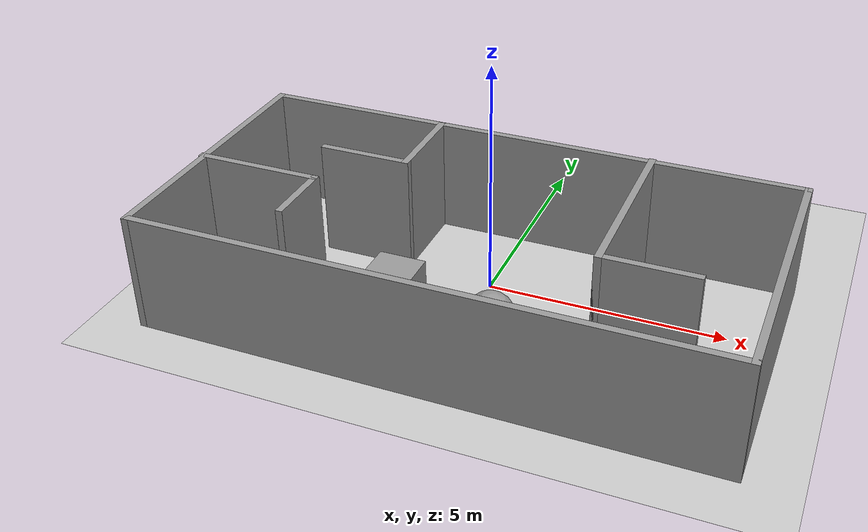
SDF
<sdf version="1.7">
 <world name="default">
  <light name="sun" type="directional">
   <pose>0 0 10 0 -0 0</pose>
   <diffuse>0.8 0.8 0.8 1</diffuse>
   <specular>0.2 0.2 0.2 1</specular>
   <attenuation>
    <range>1000</range>
    <constant>0.9</constant>
    <linear>0.01</linear>
    <quadratic>0.001</quadratic>
   </attenuation>
   <direction>-0.5 0.1 -0.9</direction>
   <spot><inner_angle>0</inner_angle><outer_angle>0</outer_angle><falloff>0</falloff></spot>
  </light>
  <model name="ground_plane">
   <static>1</static>
   <link name="link">
    <collision name="collision">
     <geometry><plane><normal>0 0 1</normal><size>100 100</size></plane></geometry>
     <surface><friction><ode><mu>100</mu><mu2>50</mu2></ode></friction></surface>
    </collision>
    <visual name="visual">
     <cast_shadows>0</cast_shadows>
     <geometry><plane><normal>0 0 1</normal><size>100 100</size></plane></geometry>
     <material>
      <script><uri>file://media/materials/scripts/gazebo.material</uri><name>Gazebo/Grey</name></script>
     </material>
    </visual>
   </link>
  </model>
  <gravity>0 0 -9.8</gravity>
  <magnetic_field>6e-06 2.3e-05 -4.2e-05</magnetic_field>
  <atmosphere type="adiabatic"/>
  <physics type="ode">
   <max_step_size>0.001</max_step_size>
   <real_time_factor>1</real_time_factor>
   <real_time_update_rate>1000</real_time_update_rate>
  </physics>
  <scene><ambient>0.4 0.4 0.4 1</ambient><background>0.7 0.7 0.7 1</background><shadows>1</shadows></scene>
  <audio><device>default</device></audio>
  <spherical_coordinates>
   <surface_model>EARTH_WGS84</surface_model>
   <latitude_deg>0</latitude_deg>
   <longitude_deg>0</longitude_deg>
   <elevation>0</elevation>
   <heading_deg>0</heading_deg>
  </spherical_coordinates>
  <model name="room">
   <pose>-0.02765 0.021981 0 0 -0 0</pose>
   <link name="Wall_0">
    <collision name="Wall_0_Collision">
     <geometry><box><size>12 0.15 2.5</size></box></geometry>
     <pose>0 0 1.25 0 -0 0</pose>
    </collision>
    <visual name="Wall_0_Visual">
     <pose>0 0 1.25 0 -0 0</pose>
     <geometry><box><size>12 0.15 2.5</size></box></geometry>
     <material>
      <script><uri>file://media/materials/scripts/gazebo.material</uri><name>Gazebo/Grey</name></script>
      <ambient>1 1 1 1</ambient>
     </material>
     <meta><layer>0</layer></meta>
    </visual>
    <pose>0.02 2.0375 0 0 -0 0</pose>
   </link>
   <link name="Wall_1">
    <collision name="Wall_1_Collision">
     <geometry><box><size>6 0.15 2.5</size></box></geometry>
     <pose>0 0 1.25 0 -0 0</pose>
    </collision>
    <visual name="Wall_1_Visual">
     <pose>0 0 1.25 0 -0 0</pose>
     <geometry><box><size>6 0.15 2.5</size></box></geometry>
     <material>
      <script><uri>file://media/materials/scripts/gazebo.material</uri><name>Gazebo/Grey</name></script>
      <ambient>1 1 1 1</ambient>
     </material>
     <meta><layer>0</layer></meta>
    </visual>
    <pose>5.945 -0.8875 0 0 -0 -1.5708</pose>
   </link>
   <link name="Wall_11">
    <collision name="Wall_11_Collision">
     <geometry><box><size>4 0.15 2.5</size></box></geometry>
     <pose>0 0 1.25 0 -0 0</pose>
    </collision>
    <visual name="Wall_11_Visual">
     <pose>0 0 1.25 0 -0 0</pose>
     <geometry><box><size>4 0.15 2.5</size></box></geometry>
     <material>
      <script><uri>file://media/materials/scripts/gazebo.material</uri><name>Gazebo/Grey</name></script>
      <ambient>1 1 1 1</ambient>
     </material>
     <meta><layer>0</layer></meta>
    </visual>
    <pose>2.775 0.1525 0 0 -0 -1.5708</pose>
   </link>
   <link name="Wall_12">
    <collision name="Wall_12_Collision">
     <geometry><box><size>2 0.15 2.5</size></box></geometry>
     <pose>0 0 1.25 0 -0 0</pose>
    </collision>
    <visual name="Wall_12_Visual">
     <pose>0 0 1.25 0 -0 0</pose>
     <geometry><box><size>2 0.15 2.5</size></box></geometry>
     <material>
      <script><uri>file://media/materials/scripts/gazebo.material</uri><name>Gazebo/Grey</name></script>
      <ambient>1 1 1 1</ambient>
     </material>
     <meta><layer>0</layer></meta>
    </visual>
    <pose>3.7 -1.7725 0 0 -0 0</pose>
   </link>
   <link name="Wall_2">
    <collision name="Wall_2_Collision">
     <geometry><box><size>12 0.15 2.5</size></box></geometry>
     <pose>0 0 1.25 0 -0 0</pose>
    </collision>
    <visual name="Wall_2_Visual">
     <pose>0 0 1.25 0 -0 0</pose>
     <geometry><box><size>12 0.15 2.5</size></box></geometry>
     <material>
      <script><uri>file://media/materials/scripts/gazebo.material</uri><name>Gazebo/Grey</name></script>
      <ambient>1 1 1 1</ambient>
     </material>
     <meta><layer>0</layer></meta>
    </visual>
    <pose>0.02 -3.8125 0 0 -0 3.14159</pose>
   </link>
   <link name="Wall_3">
    <collision name="Wall_3_Collision">
     <geometry><box><size>6 0.15 2.5</size></box></geometry>
     <pose>0 0 1.25 0 -0 0</pose>
    </collision>
    <visual name="Wall_3_Visual">
     <pose>0 0 1.25 0 -0 0</pose>
     <geometry><box><size>6 0.15 2.5</size></box></geometry>
     <material>
      <script><uri>file://media/materials/scripts/gazebo.material</uri><name>Gazebo/Grey</name></script>
      <ambient>1 1 1 1</ambient>
     </material>
     <meta><layer>0</layer></meta>
    </visual>
    <pose>-5.905 -0.8875 0 0 -0 1.5708</pose>
   </link>
   <link name="Wall_5">
    <collision name="Wall_5_Collision">
     <geometry><box><size>2 0.15 2.5</size></box></geometry>
     <pose>0 0 1.25 0 -0 0</pose>
    </collision>
    <visual name="Wall_5_Visual">
     <pose>0 0 1.25 0 -0 0</pose>
     <geometry><box><size>2 0.15 2.5</size></box></geometry>
     <material>
      <script><uri>file://media/materials/scripts/gazebo.material</uri><name>Gazebo/Grey</name></script>
      <ambient>1 1 1 1</ambient>
     </material>
     <meta><layer>0</layer></meta>
    </visual>
    <pose>-1.915 1.0925 0 0 -0 -1.5708</pose>
   </link>
   <link name="Wall_6">
    <collision name="Wall_6_Collision">
     <geometry><box><size>2 0.15 2.5</size></box></geometry>
     <pose>0 0 1.25 0 -0 0</pose>
    </collision>
    <visual name="Wall_6_Visual">
     <pose>0 0 1.25 0 -0 0</pose>
     <geometry><box><size>2 0.15 2.5</size></box></geometry>
     <material>
      <script><uri>file://media/materials/scripts/gazebo.material</uri><name>Gazebo/Grey</name></script>
      <ambient>1 1 1 1</ambient>
     </material>
     <meta><layer>0</layer></meta>
    </visual>
    <pose>-2.84 0.1675 0 0 -0 3.14159</pose>
   </link>
   <link name="Wall_8">
    <collision name="Wall_8_Collision">
     <geometry><box><size>2.75 0.15 2.5</size></box></geometry>
     <pose>0 0 1.25 0 -0 0</pose>
    </collision>
    <visual name="Wall_8_Visual">
     <pose>0 0 1.25 0 -0 0</pose>
     <geometry><box><size>2.75 0.15 2.5</size></box></geometry>
     <material>
      <script><uri>file://media/materials/scripts/gazebo.material</uri><name>Gazebo/Grey</name></script>
      <ambient>1 1 1 1</ambient>
     </material>
     <meta><layer>0</layer></meta>
    </visual>
    <pose>-4.645 -1.1225 0 0 -0 0</pose>
   </link>
   <link name="Wall_9">
    <collision name="Wall_9_Collision">
     <geometry><box><size>1.5 0.15 2.5</size></box></geometry>
     <pose>0 0 1.25 0 -0 0</pose>
    </collision>
    <visual name="Wall_9_Visual">
     <pose>0 0 1.25 0 -0 0</pose>
     <geometry><box><size>1.5 0.15 2.5</size></box></geometry>
     <material>
      <script><uri>file://media/materials/scripts/gazebo.material</uri><name>Gazebo/Grey</name></script>
      <ambient>1 1 1 1</ambient>
     </material>
     <meta><layer>0</layer></meta>
    </visual>
    <pose>-3.345 -1.7975 0 0 -0 -1.5708</pose>
   </link>
   <static>1</static>
  </model>
  <model name="unit_box">
   <pose>-1.51216 -1.50367 0.499995 -1e-05 -0 0</pose>
   <link name="link">
    <inertial>
     <mass>1</mass>
     <inertia>
      <ixx>0.166667</ixx>
      <ixy>0</ixy>
      <ixz>0</ixz>
      <iyy>0.166667</iyy>
      <iyz>0</iyz>
      <izz>0.166667</izz>
     </inertia>
    </inertial>
    <collision name="collision"><geometry><box><size>1 1 1</size></box></geometry></collision>
    <visual name="visual">
     <geometry><box><size>1 1 1</size></box></geometry>
     <material>
      <script><name>Gazebo/Grey</name><uri>file://media/materials/scripts/gazebo.material</uri></script>
     </material>
    </visual>
   </link>
  </model>
  <model name="unit_sphere">
   <pose>0.618943 -1.60215 0.5 0 -0 0</pose>
   <link name="link">
    <inertial>
     <mass>1</mass>
     <inertia><ixx>0.1</ixx><ixy>0</ixy><ixz>0</ixz><iyy>0.1</iyy><iyz>0</iyz><izz>0.1</izz></inertia>
    </inertial>
    <collision name="collision"><geometry><sphere><radius>0.5</radius></sphere></geometry></collision>
    <visual name="visual">
     <geometry><sphere><radius>0.5</radius></sphere></geometry>
     <material>
      <script><name>Gazebo/Grey</name><uri>file://media/materials/scripts/gazebo.material</uri></script>
     </material>
    </visual>
   </link>
  </model>
 </world>
</sdf>
